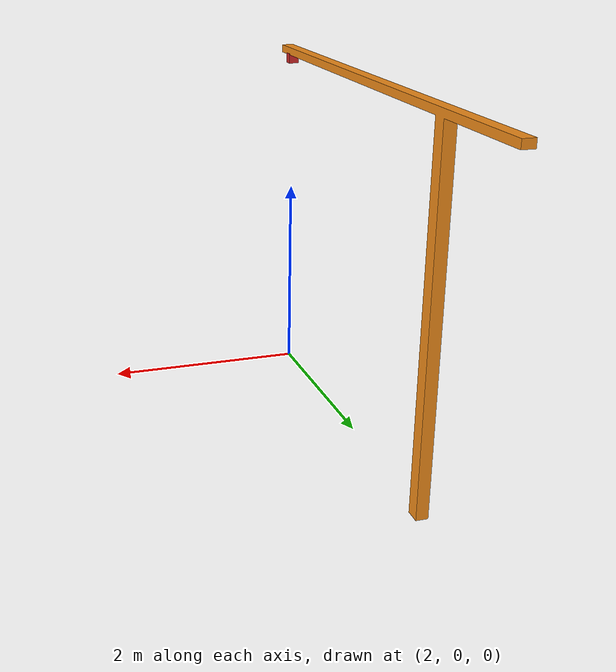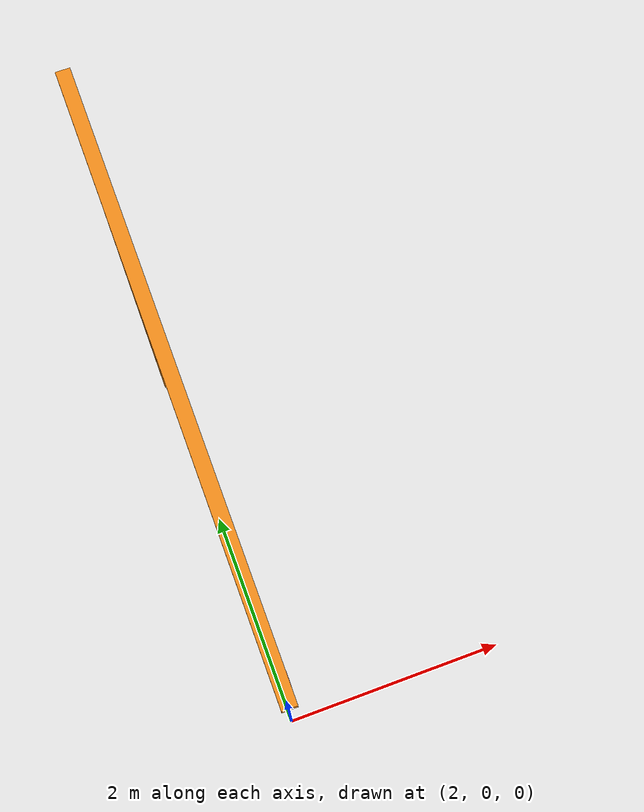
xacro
<?xml version="1.0"?>
<robot name="camera" xmlns:xacro="http://ros.org/wiki/xacro">

  <xacro:macro name="default_inertial" params="mass">
     <inertial>
       <mass value="${mass}"/>
       <inertia ixx="1.0" ixy="0.0" ixz="0.0" iyy="1.0" iyz="0.0" izz="1.0" />
     </inertial>
  </xacro:macro>

  <link name="world"/>

  <link name="balka">
    <visual>
      <geometry>
        <mesh filename="package://robot_description/meshes/balka.stl"/>
      </geometry>
    <origin rpy ="3.14 0 3.14" xyz ="2 3.5 -0.1"/>
    </visual>

    <xacro:default_inertial mass="0.01"/>
  </link>

  <link name="camera_link">
    <collision>
      <origin xyz="0 0 0" rpy="3.14 1.57 0"/>
      <geometry>
    <box size="0.5 0.5 0.5"/>
      </geometry>
    </collision>

    <visual>
      <origin xyz="0 0 0" rpy="0 0 0"/>
      <geometry>
    <box size="0.1 0.1 0.1"/>
      </geometry>
      <material name="red"/>
    </visual>

    <xacro:default_inertial mass="0.01"/>
  </link>

  <joint name="balkaworld" type="fixed">
    <parent link="world"/>
    <child link="balka"/>
  </joint>

  <joint name="camera_joint" type="fixed">
      <axis xyz="0 1 0" />
      <origin xyz="2 0 3.4" rpy="0 1.57 0"/>
      <parent link="balka"/>
      <child link="camera_link"/>
    </joint>

    <gazebo reference="camera_link">
           <material>Gazebo/Red</material>
    </gazebo>

    <gazebo reference="balka">
           <material>Gazebo/Orange</material>
    </gazebo>

    <gazebo reference="camera_link">
      <sensor type="camera" name="camera1">
        <update_rate>100.0</update_rate>
        <camera name="head">
          <horizontal_fov>1.3962634</horizontal_fov>
          <image>
            <width>640</width>
            <height>480</height>
            <format>R8G8B8</format>
          </image>
          <clip>
            <near>0.02</near>
            <far>300</far>
          </clip>
          <noise>
            <type>gaussian</type>

            <mean>0.0</mean>
            <stddev>0.007</stddev>
          </noise>
        </camera>
        <plugin name="camera_controller" filename="libgazebo_ros_camera.so">
          <alwaysOn>true</alwaysOn>
          <updateRate>0.0</updateRate>
          <cameraName>robot/camera1</cameraName>
          <imageTopicName>image_raw</imageTopicName>
          <cameraInfoTopicName>camera_info</cameraInfoTopicName>
          <frameName>camera_link</frameName>
          <hackBaseline>0.07</hackBaseline>
          <distortionK1>0.0</distortionK1>
          <distortionK2>0.0</distortionK2>
          <distortionK3>0.0</distortionK3>
          <distortionT1>0.0</distortionT1>
          <distortionT2>0.0</distortionT2>
        </plugin>
      </sensor>
    </gazebo>
  </robot>
